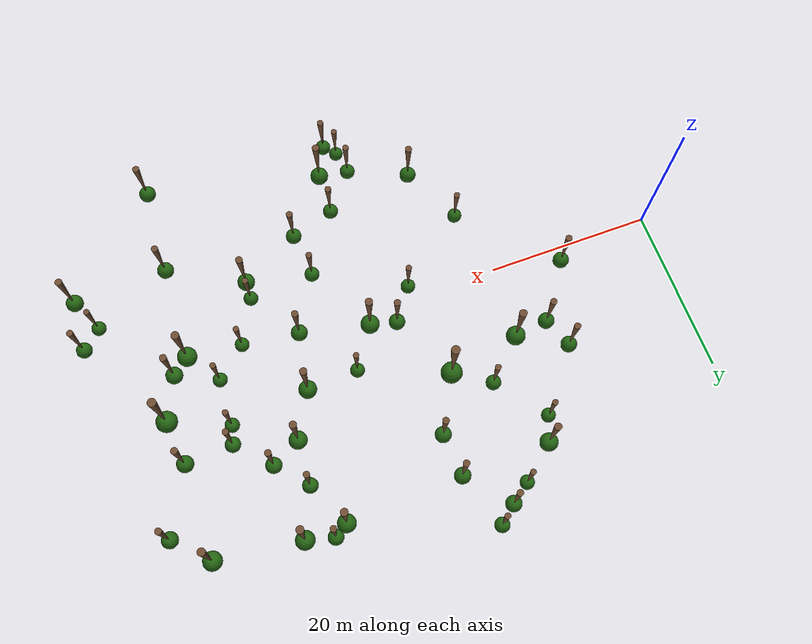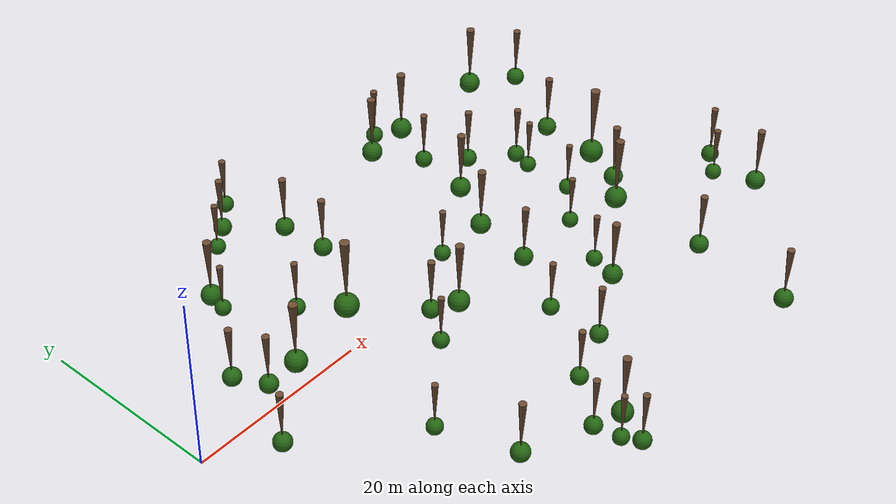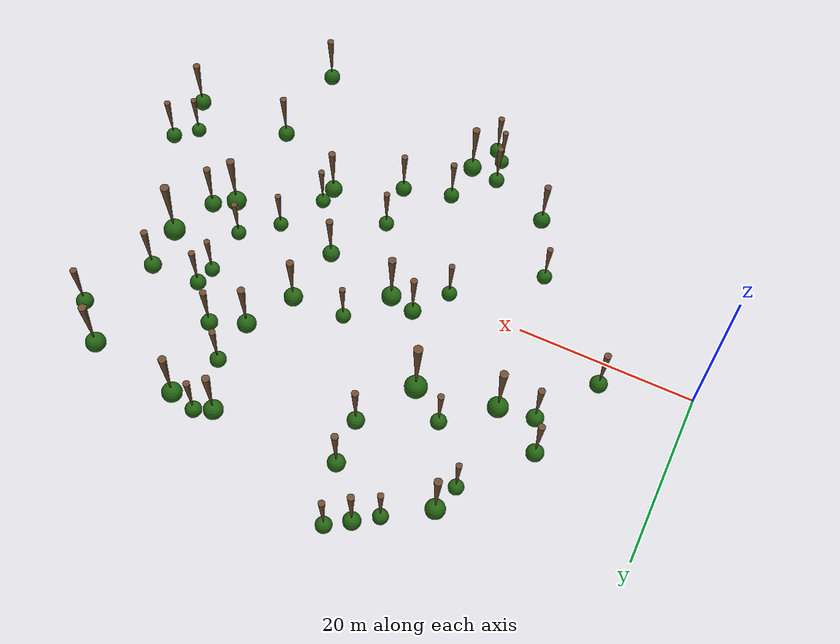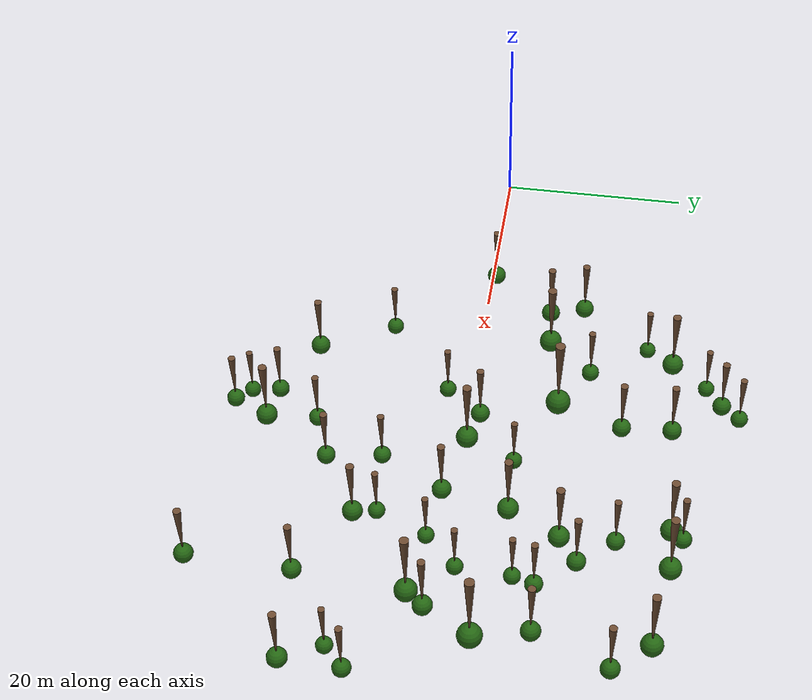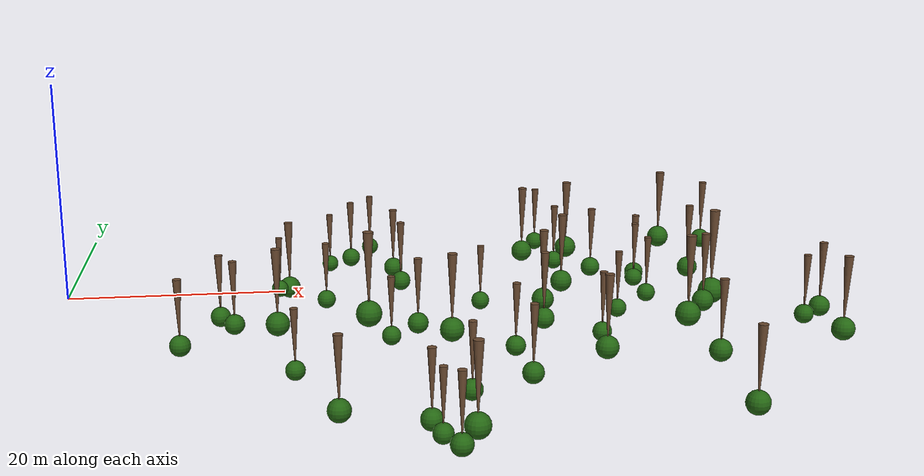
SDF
<sdf version="1.10">
 <model name="lehrforst_trees">
  <static>true</static>
  <link name="tree_0003">
   <visual name="tree_0003_trunk">
    <pose>28.569 8.946 -1.156 3.14159 0 0</pose>
    <geometry><cone><radius>0.546</radius><length>8.736</length></cone></geometry>
    <material>
     <ambient>0.42 0.29 0.19 1</ambient>
     <diffuse>0.42 0.29 0.19 1</diffuse>
     <specular>0.42 0.29 0.19 1</specular>
    </material>
   </visual>
   <visual name="tree_0003_leaves">
    <pose>28.569 8.946 -5.524 3.14159 0 0</pose>
    <geometry><sphere><radius>1.365</radius></sphere></geometry>
    <material>
     <ambient>0.14 0.40 0.07 1</ambient>
     <diffuse>0.14 0.40 0.07 1</diffuse>
     <specular>0.14 0.40 0.07 1</specular>
    </material>
   </visual>
   <collision name="tree_0003_collision">
    <pose>28.569 8.946 -1.156 3.14159 0 0</pose>
    <geometry><cone><radius>0.546</radius><length>8.736</length></cone></geometry>
   </collision>
  </link>
  <link name="tree_0008">
   <visual name="tree_0008_trunk">
    <pose>63.142 3.854 1.507 3.14159 0 0</pose>
    <geometry><cone><radius>0.524</radius><length>8.384</length></cone></geometry>
    <material>
     <ambient>0.42 0.29 0.19 1</ambient>
     <diffuse>0.42 0.29 0.19 1</diffuse>
     <specular>0.42 0.29 0.19 1</specular>
    </material>
   </visual>
   <visual name="tree_0008_leaves">
    <pose>63.142 3.854 -2.6850000000000005 3.14159 0 0</pose>
    <geometry><sphere><radius>1.310</radius></sphere></geometry>
    <material>
     <ambient>0.14 0.40 0.07 1</ambient>
     <diffuse>0.14 0.40 0.07 1</diffuse>
     <specular>0.14 0.40 0.07 1</specular>
    </material>
   </visual>
   <collision name="tree_0008_collision">
    <pose>63.142 3.854 1.507 3.14159 0 0</pose>
    <geometry><cone><radius>0.524</radius><length>8.384</length></cone></geometry>
   </collision>
  </link>
  <link name="tree_0011">
   <visual name="tree_0011_trunk">
    <pose>19.209 7.13 -1.709 3.14159 0 0</pose>
    <geometry><cone><radius>0.492</radius><length>7.872</length></cone></geometry>
    <material>
     <ambient>0.42 0.29 0.19 1</ambient>
     <diffuse>0.42 0.29 0.19 1</diffuse>
     <specular>0.42 0.29 0.19 1</specular>
    </material>
   </visual>
   <visual name="tree_0011_leaves">
    <pose>19.209 7.13 -5.645 3.14159 0 0</pose>
    <geometry><sphere><radius>1.230</radius></sphere></geometry>
    <material>
     <ambient>0.14 0.40 0.07 1</ambient>
     <diffuse>0.14 0.40 0.07 1</diffuse>
     <specular>0.14 0.40 0.07 1</specular>
    </material>
   </visual>
   <collision name="tree_0011_collision">
    <pose>19.209 7.13 -1.709 3.14159 0 0</pose>
    <geometry><cone><radius>0.492</radius><length>7.872</length></cone></geometry>
   </collision>
  </link>
  <link name="tree_0013">
   <visual name="tree_0013_trunk">
    <pose>58.567 -3.165 1.219 3.14159 0 0</pose>
    <geometry><cone><radius>0.486</radius><length>7.776</length></cone></geometry>
    <material>
     <ambient>0.42 0.29 0.19 1</ambient>
     <diffuse>0.42 0.29 0.19 1</diffuse>
     <specular>0.42 0.29 0.19 1</specular>
    </material>
   </visual>
   <visual name="tree_0013_leaves">
    <pose>58.567 -3.165 -2.6689999999999996 3.14159 0 0</pose>
    <geometry><sphere><radius>1.215</radius></sphere></geometry>
    <material>
     <ambient>0.14 0.40 0.07 1</ambient>
     <diffuse>0.14 0.40 0.07 1</diffuse>
     <specular>0.14 0.40 0.07 1</specular>
    </material>
   </visual>
   <collision name="tree_0013_collision">
    <pose>58.567 -3.165 1.219 3.14159 0 0</pose>
    <geometry><cone><radius>0.486</radius><length>7.776</length></cone></geometry>
   </collision>
  </link>
  <link name="tree_0015">
   <visual name="tree_0015_trunk">
    <pose>36.035 -0.141 -0.581 3.14159 0 0</pose>
    <geometry><cone><radius>0.478</radius><length>7.648</length></cone></geometry>
    <material>
     <ambient>0.42 0.29 0.19 1</ambient>
     <diffuse>0.42 0.29 0.19 1</diffuse>
     <specular>0.42 0.29 0.19 1</specular>
    </material>
   </visual>
   <visual name="tree_0015_leaves">
    <pose>36.035 -0.141 -4.404999999999999 3.14159 0 0</pose>
    <geometry><sphere><radius>1.195</radius></sphere></geometry>
    <material>
     <ambient>0.14 0.40 0.07 1</ambient>
     <diffuse>0.14 0.40 0.07 1</diffuse>
     <specular>0.14 0.40 0.07 1</specular>
    </material>
   </visual>
   <collision name="tree_0015_collision">
    <pose>36.035 -0.141 -0.581 3.14159 0 0</pose>
    <geometry><cone><radius>0.478</radius><length>7.648</length></cone></geometry>
   </collision>
  </link>
  <link name="tree_0019">
   <visual name="tree_0019_trunk">
    <pose>52.082 22.715 0.86 3.14159 0 0</pose>
    <geometry><cone><radius>0.472</radius><length>7.552</length></cone></geometry>
    <material>
     <ambient>0.42 0.29 0.19 1</ambient>
     <diffuse>0.42 0.29 0.19 1</diffuse>
     <specular>0.42 0.29 0.19 1</specular>
    </material>
   </visual>
   <visual name="tree_0019_leaves">
    <pose>52.082 22.715 -2.916 3.14159 0 0</pose>
    <geometry><sphere><radius>1.180</radius></sphere></geometry>
    <material>
     <ambient>0.14 0.40 0.07 1</ambient>
     <diffuse>0.14 0.40 0.07 1</diffuse>
     <specular>0.14 0.40 0.07 1</specular>
    </material>
   </visual>
   <collision name="tree_0019_collision">
    <pose>52.082 22.715 0.86 3.14159 0 0</pose>
    <geometry><cone><radius>0.472</radius><length>7.552</length></cone></geometry>
   </collision>
  </link>
  <link name="tree_0021">
   <visual name="tree_0021_trunk">
    <pose>62.606 21.554 2.054 3.14159 0 0</pose>
    <geometry><cone><radius>0.468</radius><length>7.488</length></cone></geometry>
    <material>
     <ambient>0.42 0.29 0.19 1</ambient>
     <diffuse>0.42 0.29 0.19 1</diffuse>
     <specular>0.42 0.29 0.19 1</specular>
    </material>
   </visual>
   <visual name="tree_0021_leaves">
    <pose>62.606 21.554 -1.6900000000000004 3.14159 0 0</pose>
    <geometry><sphere><radius>1.170</radius></sphere></geometry>
    <material>
     <ambient>0.14 0.40 0.07 1</ambient>
     <diffuse>0.14 0.40 0.07 1</diffuse>
     <specular>0.14 0.40 0.07 1</specular>
    </material>
   </visual>
   <collision name="tree_0021_collision">
    <pose>62.606 21.554 2.054 3.14159 0 0</pose>
    <geometry><cone><radius>0.468</radius><length>7.488</length></cone></geometry>
   </collision>
  </link>
  <link name="tree_0026">
   <visual name="tree_0026_trunk">
    <pose>20.56 21.103 -2.404 3.14159 0 0</pose>
    <geometry><cone><radius>0.464</radius><length>7.424</length></cone></geometry>
    <material>
     <ambient>0.42 0.29 0.19 1</ambient>
     <diffuse>0.42 0.29 0.19 1</diffuse>
     <specular>0.42 0.29 0.19 1</specular>
    </material>
   </visual>
   <visual name="tree_0026_leaves">
    <pose>20.56 21.103 -6.116 3.14159 0 0</pose>
    <geometry><sphere><radius>1.160</radius></sphere></geometry>
    <material>
     <ambient>0.14 0.40 0.07 1</ambient>
     <diffuse>0.14 0.40 0.07 1</diffuse>
     <specular>0.14 0.40 0.07 1</specular>
    </material>
   </visual>
   <collision name="tree_0026_collision">
    <pose>20.56 21.103 -2.404 3.14159 0 0</pose>
    <geometry><cone><radius>0.464</radius><length>7.424</length></cone></geometry>
   </collision>
  </link>
  <link name="tree_0034">
   <visual name="tree_0034_trunk">
    <pose>35.26 -22.294 -1.24 3.14159 0 0</pose>
    <geometry><cone><radius>0.460</radius><length>7.360</length></cone></geometry>
    <material>
     <ambient>0.42 0.29 0.19 1</ambient>
     <diffuse>0.42 0.29 0.19 1</diffuse>
     <specular>0.42 0.29 0.19 1</specular>
    </material>
   </visual>
   <visual name="tree_0034_leaves">
    <pose>35.26 -22.294 -4.92 3.14159 0 0</pose>
    <geometry><sphere><radius>1.150</radius></sphere></geometry>
    <material>
     <ambient>0.14 0.40 0.07 1</ambient>
     <diffuse>0.14 0.40 0.07 1</diffuse>
     <specular>0.14 0.40 0.07 1</specular>
    </material>
   </visual>
   <collision name="tree_0034_collision">
    <pose>35.26 -22.294 -1.24 3.14159 0 0</pose>
    <geometry><cone><radius>0.460</radius><length>7.360</length></cone></geometry>
   </collision>
  </link>
  <link name="tree_0035">
   <visual name="tree_0035_trunk">
    <pose>46.962 22.473 0.51 3.14159 0 0</pose>
    <geometry><cone><radius>0.458</radius><length>7.328</length></cone></geometry>
    <material>
     <ambient>0.42 0.29 0.19 1</ambient>
     <diffuse>0.42 0.29 0.19 1</diffuse>
     <specular>0.42 0.29 0.19 1</specular>
    </material>
   </visual>
   <visual name="tree_0035_leaves">
    <pose>46.962 22.473 -3.154 3.14159 0 0</pose>
    <geometry><sphere><radius>1.145</radius></sphere></geometry>
    <material>
     <ambient>0.14 0.40 0.07 1</ambient>
     <diffuse>0.14 0.40 0.07 1</diffuse>
     <specular>0.14 0.40 0.07 1</specular>
    </material>
   </visual>
   <collision name="tree_0035_collision">
    <pose>46.962 22.473 0.51 3.14159 0 0</pose>
    <geometry><cone><radius>0.458</radius><length>7.328</length></cone></geometry>
   </collision>
  </link>
  <link name="tree_0040">
   <visual name="tree_0040_trunk">
    <pose>49.152 11.139 0.233 3.14159 0 0</pose>
    <geometry><cone><radius>0.452</radius><length>7.232</length></cone></geometry>
    <material>
     <ambient>0.42 0.29 0.19 1</ambient>
     <diffuse>0.42 0.29 0.19 1</diffuse>
     <specular>0.42 0.29 0.19 1</specular>
    </material>
   </visual>
   <visual name="tree_0040_leaves">
    <pose>49.152 11.139 -3.383 3.14159 0 0</pose>
    <geometry><sphere><radius>1.130</radius></sphere></geometry>
    <material>
     <ambient>0.14 0.40 0.07 1</ambient>
     <diffuse>0.14 0.40 0.07 1</diffuse>
     <specular>0.14 0.40 0.07 1</specular>
    </material>
   </visual>
   <collision name="tree_0040_collision">
    <pose>49.152 11.139 0.233 3.14159 0 0</pose>
    <geometry><cone><radius>0.452</radius><length>7.232</length></cone></geometry>
   </collision>
  </link>
  <link name="tree_0041">
   <visual name="tree_0041_trunk">
    <pose>46.069 5.531 0.116 3.14159 0 0</pose>
    <geometry><cone><radius>0.452</radius><length>7.232</length></cone></geometry>
    <material>
     <ambient>0.42 0.29 0.19 1</ambient>
     <diffuse>0.42 0.29 0.19 1</diffuse>
     <specular>0.42 0.29 0.19 1</specular>
    </material>
   </visual>
   <visual name="tree_0041_leaves">
    <pose>46.069 5.531 -3.5 3.14159 0 0</pose>
    <geometry><sphere><radius>1.130</radius></sphere></geometry>
    <material>
     <ambient>0.14 0.40 0.07 1</ambient>
     <diffuse>0.14 0.40 0.07 1</diffuse>
     <specular>0.14 0.40 0.07 1</specular>
    </material>
   </visual>
   <collision name="tree_0041_collision">
    <pose>46.069 5.531 0.116 3.14159 0 0</pose>
    <geometry><cone><radius>0.452</radius><length>7.232</length></cone></geometry>
   </collision>
  </link>
  <link name="tree_0060">
   <visual name="tree_0060_trunk">
    <pose>48.872 -10.303 0.335 3.14159 0 0</pose>
    <geometry><cone><radius>0.432</radius><length>6.912</length></cone></geometry>
    <material>
     <ambient>0.42 0.29 0.19 1</ambient>
     <diffuse>0.42 0.29 0.19 1</diffuse>
     <specular>0.42 0.29 0.19 1</specular>
    </material>
   </visual>
   <visual name="tree_0060_leaves">
    <pose>48.872 -10.303 -3.121 3.14159 0 0</pose>
    <geometry><sphere><radius>1.080</radius></sphere></geometry>
    <material>
     <ambient>0.14 0.40 0.07 1</ambient>
     <diffuse>0.14 0.40 0.07 1</diffuse>
     <specular>0.14 0.40 0.07 1</specular>
    </material>
   </visual>
   <collision name="tree_0060_collision">
    <pose>48.872 -10.303 0.335 3.14159 0 0</pose>
    <geometry><cone><radius>0.432</radius><length>6.912</length></cone></geometry>
   </collision>
  </link>
  <link name="tree_0071">
   <visual name="tree_0071_trunk">
    <pose>60.635 -1.175 1.326 3.14159 0 0</pose>
    <geometry><cone><radius>0.422</radius><length>6.752</length></cone></geometry>
    <material>
     <ambient>0.42 0.29 0.19 1</ambient>
     <diffuse>0.42 0.29 0.19 1</diffuse>
     <specular>0.42 0.29 0.19 1</specular>
    </material>
   </visual>
   <visual name="tree_0071_leaves">
    <pose>60.635 -1.175 -2.05 3.14159 0 0</pose>
    <geometry><sphere><radius>1.055</radius></sphere></geometry>
    <material>
     <ambient>0.14 0.40 0.07 1</ambient>
     <diffuse>0.14 0.40 0.07 1</diffuse>
     <specular>0.14 0.40 0.07 1</specular>
    </material>
   </visual>
   <collision name="tree_0071_collision">
    <pose>60.635 -1.175 1.326 3.14159 0 0</pose>
    <geometry><cone><radius>0.422</radius><length>6.752</length></cone></geometry>
   </collision>
  </link>
  <link name="tree_0076">
   <visual name="tree_0076_trunk">
    <pose>69.408 -13.844 2.384 3.14159 0 0</pose>
    <geometry><cone><radius>0.420</radius><length>6.720</length></cone></geometry>
    <material>
     <ambient>0.42 0.29 0.19 1</ambient>
     <diffuse>0.42 0.29 0.19 1</diffuse>
     <specular>0.42 0.29 0.19 1</specular>
    </material>
   </visual>
   <visual name="tree_0076_leaves">
    <pose>69.408 -13.844 -0.976 3.14159 0 0</pose>
    <geometry><sphere><radius>1.050</radius></sphere></geometry>
    <material>
     <ambient>0.14 0.40 0.07 1</ambient>
     <diffuse>0.14 0.40 0.07 1</diffuse>
     <specular>0.14 0.40 0.07 1</specular>
    </material>
   </visual>
   <collision name="tree_0076_collision">
    <pose>69.408 -13.844 2.384 3.14159 0 0</pose>
    <geometry><cone><radius>0.420</radius><length>6.720</length></cone></geometry>
   </collision>
  </link>
  <link name="tree_0080">
   <visual name="tree_0080_trunk">
    <pose>24.254 -18.389 -1.363 3.14159 0 0</pose>
    <geometry><cone><radius>0.418</radius><length>6.688</length></cone></geometry>
    <material>
     <ambient>0.42 0.29 0.19 1</ambient>
     <diffuse>0.42 0.29 0.19 1</diffuse>
     <specular>0.42 0.29 0.19 1</specular>
    </material>
   </visual>
   <visual name="tree_0080_leaves">
    <pose>24.254 -18.389 -4.707 3.14159 0 0</pose>
    <geometry><sphere><radius>1.045</radius></sphere></geometry>
    <material>
     <ambient>0.14 0.40 0.07 1</ambient>
     <diffuse>0.14 0.40 0.07 1</diffuse>
     <specular>0.14 0.40 0.07 1</specular>
    </material>
   </visual>
   <collision name="tree_0080_collision">
    <pose>24.254 -18.389 -1.363 3.14159 0 0</pose>
    <geometry><cone><radius>0.418</radius><length>6.688</length></cone></geometry>
   </collision>
  </link>
  <link name="tree_0083">
   <visual name="tree_0083_trunk">
    <pose>62.414 9.743 1.462 3.14159 0 0</pose>
    <geometry><cone><radius>0.416</radius><length>6.656</length></cone></geometry>
    <material>
     <ambient>0.42 0.29 0.19 1</ambient>
     <diffuse>0.42 0.29 0.19 1</diffuse>
     <specular>0.42 0.29 0.19 1</specular>
    </material>
   </visual>
   <visual name="tree_0083_leaves">
    <pose>62.414 9.743 -1.8659999999999999 3.14159 0 0</pose>
    <geometry><sphere><radius>1.040</radius></sphere></geometry>
    <material>
     <ambient>0.14 0.40 0.07 1</ambient>
     <diffuse>0.14 0.40 0.07 1</diffuse>
     <specular>0.14 0.40 0.07 1</specular>
    </material>
   </visual>
   <collision name="tree_0083_collision">
    <pose>62.414 9.743 1.462 3.14159 0 0</pose>
    <geometry><cone><radius>0.416</radius><length>6.656</length></cone></geometry>
   </collision>
  </link>
  <link name="tree_0085">
   <visual name="tree_0085_trunk">
    <pose>32.181 21.663 -1.035 3.14159 0 0</pose>
    <geometry><cone><radius>0.414</radius><length>6.624</length></cone></geometry>
    <material>
     <ambient>0.42 0.29 0.19 1</ambient>
     <diffuse>0.42 0.29 0.19 1</diffuse>
     <specular>0.42 0.29 0.19 1</specular>
    </material>
   </visual>
   <visual name="tree_0085_leaves">
    <pose>32.181 21.663 -4.3469999999999995 3.14159 0 0</pose>
    <geometry><sphere><radius>1.035</radius></sphere></geometry>
    <material>
     <ambient>0.14 0.40 0.07 1</ambient>
     <diffuse>0.14 0.40 0.07 1</diffuse>
     <specular>0.14 0.40 0.07 1</specular>
    </material>
   </visual>
   <collision name="tree_0085_collision">
    <pose>32.181 21.663 -1.035 3.14159 0 0</pose>
    <geometry><cone><radius>0.414</radius><length>6.624</length></cone></geometry>
   </collision>
  </link>
  <link name="tree_0088">
   <visual name="tree_0088_trunk">
    <pose>13.372 10.431 -2.465 3.14159 0 0</pose>
    <geometry><cone><radius>0.412</radius><length>6.592</length></cone></geometry>
    <material>
     <ambient>0.42 0.29 0.19 1</ambient>
     <diffuse>0.42 0.29 0.19 1</diffuse>
     <specular>0.42 0.29 0.19 1</specular>
    </material>
   </visual>
   <visual name="tree_0088_leaves">
    <pose>13.372 10.431 -5.760999999999999 3.14159 0 0</pose>
    <geometry><sphere><radius>1.030</radius></sphere></geometry>
    <material>
     <ambient>0.14 0.40 0.07 1</ambient>
     <diffuse>0.14 0.40 0.07 1</diffuse>
     <specular>0.14 0.40 0.07 1</specular>
    </material>
   </visual>
   <collision name="tree_0088_collision">
    <pose>13.372 10.431 -2.465 3.14159 0 0</pose>
    <geometry><cone><radius>0.412</radius><length>6.592</length></cone></geometry>
   </collision>
  </link>
  <link name="tree_0092">
   <visual name="tree_0092_trunk">
    <pose>10.021 -0.234 -1.669 3.14159 0 0</pose>
    <geometry><cone><radius>0.412</radius><length>6.592</length></cone></geometry>
    <material>
     <ambient>0.42 0.29 0.19 1</ambient>
     <diffuse>0.42 0.29 0.19 1</diffuse>
     <specular>0.42 0.29 0.19 1</specular>
    </material>
   </visual>
   <visual name="tree_0092_leaves">
    <pose>10.021 -0.234 -4.965 3.14159 0 0</pose>
    <geometry><sphere><radius>1.030</radius></sphere></geometry>
    <material>
     <ambient>0.14 0.40 0.07 1</ambient>
     <diffuse>0.14 0.40 0.07 1</diffuse>
     <specular>0.14 0.40 0.07 1</specular>
    </material>
   </visual>
   <collision name="tree_0092_collision">
    <pose>10.021 -0.234 -1.669 3.14159 0 0</pose>
    <geometry><cone><radius>0.412</radius><length>6.592</length></cone></geometry>
   </collision>
  </link>
  <link name="tree_0093">
   <visual name="tree_0093_trunk">
    <pose>14.92 6.676 -2.076 3.14159 0 0</pose>
    <geometry><cone><radius>0.412</radius><length>6.592</length></cone></geometry>
    <material>
     <ambient>0.42 0.29 0.19 1</ambient>
     <diffuse>0.42 0.29 0.19 1</diffuse>
     <specular>0.42 0.29 0.19 1</specular>
    </material>
   </visual>
   <visual name="tree_0093_leaves">
    <pose>14.92 6.676 -5.372 3.14159 0 0</pose>
    <geometry><sphere><radius>1.030</radius></sphere></geometry>
    <material>
     <ambient>0.14 0.40 0.07 1</ambient>
     <diffuse>0.14 0.40 0.07 1</diffuse>
     <specular>0.14 0.40 0.07 1</specular>
    </material>
   </visual>
   <collision name="tree_0093_collision">
    <pose>14.92 6.676 -2.076 3.14159 0 0</pose>
    <geometry><cone><radius>0.412</radius><length>6.592</length></cone></geometry>
   </collision>
  </link>
  <link name="tree_0094">
   <visual name="tree_0094_trunk">
    <pose>57.165 -26.08 0.838 3.14159 0 0</pose>
    <geometry><cone><radius>0.412</radius><length>6.592</length></cone></geometry>
    <material>
     <ambient>0.42 0.29 0.19 1</ambient>
     <diffuse>0.42 0.29 0.19 1</diffuse>
     <specular>0.42 0.29 0.19 1</specular>
    </material>
   </visual>
   <visual name="tree_0094_leaves">
    <pose>57.165 -26.08 -2.4579999999999997 3.14159 0 0</pose>
    <geometry><sphere><radius>1.030</radius></sphere></geometry>
    <material>
     <ambient>0.14 0.40 0.07 1</ambient>
     <diffuse>0.14 0.40 0.07 1</diffuse>
     <specular>0.14 0.40 0.07 1</specular>
    </material>
   </visual>
   <collision name="tree_0094_collision">
    <pose>57.165 -26.08 0.838 3.14159 0 0</pose>
    <geometry><cone><radius>0.412</radius><length>6.592</length></cone></geometry>
   </collision>
  </link>
  <link name="tree_0095">
   <visual name="tree_0095_trunk">
    <pose>44.75 -1.61 0.196 3.14159 0 0</pose>
    <geometry><cone><radius>0.412</radius><length>6.592</length></cone></geometry>
    <material>
     <ambient>0.42 0.29 0.19 1</ambient>
     <diffuse>0.42 0.29 0.19 1</diffuse>
     <specular>0.42 0.29 0.19 1</specular>
    </material>
   </visual>
   <visual name="tree_0095_leaves">
    <pose>44.75 -1.61 -3.0999999999999996 3.14159 0 0</pose>
    <geometry><sphere><radius>1.030</radius></sphere></geometry>
    <material>
     <ambient>0.14 0.40 0.07 1</ambient>
     <diffuse>0.14 0.40 0.07 1</diffuse>
     <specular>0.14 0.40 0.07 1</specular>
    </material>
   </visual>
   <collision name="tree_0095_collision">
    <pose>44.75 -1.61 0.196 3.14159 0 0</pose>
    <geometry><cone><radius>0.412</radius><length>6.592</length></cone></geometry>
   </collision>
  </link>
  <link name="tree_0099">
   <visual name="tree_0099_trunk">
    <pose>32.546 16.219 -1.05 3.14159 0 0</pose>
    <geometry><cone><radius>0.408</radius><length>6.528</length></cone></geometry>
    <material>
     <ambient>0.42 0.29 0.19 1</ambient>
     <diffuse>0.42 0.29 0.19 1</diffuse>
     <specular>0.42 0.29 0.19 1</specular>
    </material>
   </visual>
   <visual name="tree_0099_leaves">
    <pose>32.546 16.219 -4.314 3.14159 0 0</pose>
    <geometry><sphere><radius>1.020</radius></sphere></geometry>
    <material>
     <ambient>0.14 0.40 0.07 1</ambient>
     <diffuse>0.14 0.40 0.07 1</diffuse>
     <specular>0.14 0.40 0.07 1</specular>
    </material>
   </visual>
   <collision name="tree_0099_collision">
    <pose>32.546 16.219 -1.05 3.14159 0 0</pose>
    <geometry><cone><radius>0.408</radius><length>6.528</length></cone></geometry>
   </collision>
  </link>
  <link name="tree_0100">
   <visual name="tree_0100_trunk">
    <pose>32.823 0.866 -0.689 3.14159 0 0</pose>
    <geometry><cone><radius>0.408</radius><length>6.528</length></cone></geometry>
    <material>
     <ambient>0.42 0.29 0.19 1</ambient>
     <diffuse>0.42 0.29 0.19 1</diffuse>
     <specular>0.42 0.29 0.19 1</specular>
    </material>
   </visual>
   <visual name="tree_0100_leaves">
    <pose>32.823 0.866 -3.953 3.14159 0 0</pose>
    <geometry><sphere><radius>1.020</radius></sphere></geometry>
    <material>
     <ambient>0.14 0.40 0.07 1</ambient>
     <diffuse>0.14 0.40 0.07 1</diffuse>
     <specular>0.14 0.40 0.07 1</specular>
    </material>
   </visual>
   <collision name="tree_0100_collision">
    <pose>32.823 0.866 -0.689 3.14159 0 0</pose>
    <geometry><cone><radius>0.408</radius><length>6.528</length></cone></geometry>
   </collision>
  </link>
  <link name="tree_0104">
   <visual name="tree_0104_trunk">
    <pose>57.872 -14.827 1.113 3.14159 0 0</pose>
    <geometry><cone><radius>0.408</radius><length>6.528</length></cone></geometry>
    <material>
     <ambient>0.42 0.29 0.19 1</ambient>
     <diffuse>0.42 0.29 0.19 1</diffuse>
     <specular>0.42 0.29 0.19 1</specular>
    </material>
   </visual>
   <visual name="tree_0104_leaves">
    <pose>57.872 -14.827 -2.151 3.14159 0 0</pose>
    <geometry><sphere><radius>1.020</radius></sphere></geometry>
    <material>
     <ambient>0.14 0.40 0.07 1</ambient>
     <diffuse>0.14 0.40 0.07 1</diffuse>
     <specular>0.14 0.40 0.07 1</specular>
    </material>
   </visual>
   <collision name="tree_0104_collision">
    <pose>57.872 -14.827 1.113 3.14159 0 0</pose>
    <geometry><cone><radius>0.408</radius><length>6.528</length></cone></geometry>
   </collision>
  </link>
  <link name="tree_0107">
   <visual name="tree_0107_trunk">
    <pose>27.715 26.8 -1.274 3.14159 0 0</pose>
    <geometry><cone><radius>0.406</radius><length>6.496</length></cone></geometry>
    <material>
     <ambient>0.42 0.29 0.19 1</ambient>
     <diffuse>0.42 0.29 0.19 1</diffuse>
     <specular>0.42 0.29 0.19 1</specular>
    </material>
   </visual>
   <visual name="tree_0107_leaves">
    <pose>27.715 26.8 -4.522 3.14159 0 0</pose>
    <geometry><sphere><radius>1.015</radius></sphere></geometry>
    <material>
     <ambient>0.14 0.40 0.07 1</ambient>
     <diffuse>0.14 0.40 0.07 1</diffuse>
     <specular>0.14 0.40 0.07 1</specular>
    </material>
   </visual>
   <collision name="tree_0107_collision">
    <pose>27.715 26.8 -1.274 3.14159 0 0</pose>
    <geometry><cone><radius>0.406</radius><length>6.496</length></cone></geometry>
   </collision>
  </link>
  <link name="tree_0115">
   <visual name="tree_0115_trunk">
    <pose>66.375 17.798 2.19 3.14159 0 0</pose>
    <geometry><cone><radius>0.400</radius><length>6.400</length></cone></geometry>
    <material>
     <ambient>0.42 0.29 0.19 1</ambient>
     <diffuse>0.42 0.29 0.19 1</diffuse>
     <specular>0.42 0.29 0.19 1</specular>
    </material>
   </visual>
   <visual name="tree_0115_leaves">
    <pose>66.375 17.798 -1.0100000000000002 3.14159 0 0</pose>
    <geometry><sphere><radius>1.000</radius></sphere></geometry>
    <material>
     <ambient>0.14 0.40 0.07 1</ambient>
     <diffuse>0.14 0.40 0.07 1</diffuse>
     <specular>0.14 0.40 0.07 1</specular>
    </material>
   </visual>
   <collision name="tree_0115_collision">
    <pose>66.375 17.798 2.19 3.14159 0 0</pose>
    <geometry><cone><radius>0.400</radius><length>6.400</length></cone></geometry>
   </collision>
  </link>
  <link name="tree_0118">
   <visual name="tree_0118_trunk">
    <pose>52.779 13.26 0.645 3.14159 0 0</pose>
    <geometry><cone><radius>0.400</radius><length>6.400</length></cone></geometry>
    <material>
     <ambient>0.42 0.29 0.19 1</ambient>
     <diffuse>0.42 0.29 0.19 1</diffuse>
     <specular>0.42 0.29 0.19 1</specular>
    </material>
   </visual>
   <visual name="tree_0118_leaves">
    <pose>52.779 13.26 -2.555 3.14159 0 0</pose>
    <geometry><sphere><radius>1.000</radius></sphere></geometry>
    <material>
     <ambient>0.14 0.40 0.07 1</ambient>
     <diffuse>0.14 0.40 0.07 1</diffuse>
     <specular>0.14 0.40 0.07 1</specular>
    </material>
   </visual>
   <collision name="tree_0118_collision">
    <pose>52.779 13.26 0.645 3.14159 0 0</pose>
    <geometry><cone><radius>0.400</radius><length>6.400</length></cone></geometry>
   </collision>
  </link>
  <link name="tree_0128">
   <visual name="tree_0128_trunk">
    <pose>41.271 -14.518 -0.474 3.14159 0 0</pose>
    <geometry><cone><radius>0.394</radius><length>6.304</length></cone></geometry>
    <material>
     <ambient>0.42 0.29 0.19 1</ambient>
     <diffuse>0.42 0.29 0.19 1</diffuse>
     <specular>0.42 0.29 0.19 1</specular>
    </material>
   </visual>
   <visual name="tree_0128_leaves">
    <pose>41.271 -14.518 -3.6260000000000003 3.14159 0 0</pose>
    <geometry><sphere><radius>0.985</radius></sphere></geometry>
    <material>
     <ambient>0.14 0.40 0.07 1</ambient>
     <diffuse>0.14 0.40 0.07 1</diffuse>
     <specular>0.14 0.40 0.07 1</specular>
    </material>
   </visual>
   <collision name="tree_0128_collision">
    <pose>41.271 -14.518 -0.474 3.14159 0 0</pose>
    <geometry><cone><radius>0.394</radius><length>6.304</length></cone></geometry>
   </collision>
  </link>
  <link name="tree_0133">
   <visual name="tree_0133_trunk">
    <pose>33.437 -26.119 -1.676 3.14159 0 0</pose>
    <geometry><cone><radius>0.388</radius><length>6.208</length></cone></geometry>
    <material>
     <ambient>0.42 0.29 0.19 1</ambient>
     <diffuse>0.42 0.29 0.19 1</diffuse>
     <specular>0.42 0.29 0.19 1</specular>
    </material>
   </visual>
   <visual name="tree_0133_leaves">
    <pose>33.437 -26.119 -4.78 3.14159 0 0</pose>
    <geometry><sphere><radius>0.970</radius></sphere></geometry>
    <material>
     <ambient>0.14 0.40 0.07 1</ambient>
     <diffuse>0.14 0.40 0.07 1</diffuse>
     <specular>0.14 0.40 0.07 1</specular>
    </material>
   </visual>
   <collision name="tree_0133_collision">
    <pose>33.437 -26.119 -1.676 3.14159 0 0</pose>
    <geometry><cone><radius>0.388</radius><length>6.208</length></cone></geometry>
   </collision>
  </link>
  <link name="tree_0134">
   <visual name="tree_0134_trunk">
    <pose>31.612 -21.485 -1.44 3.14159 0 0</pose>
    <geometry><cone><radius>0.388</radius><length>6.208</length></cone></geometry>
    <material>
     <ambient>0.42 0.29 0.19 1</ambient>
     <diffuse>0.42 0.29 0.19 1</diffuse>
     <specular>0.42 0.29 0.19 1</specular>
    </material>
   </visual>
   <visual name="tree_0134_leaves">
    <pose>31.612 -21.485 -4.5440000000000005 3.14159 0 0</pose>
    <geometry><sphere><radius>0.970</radius></sphere></geometry>
    <material>
     <ambient>0.14 0.40 0.07 1</ambient>
     <diffuse>0.14 0.40 0.07 1</diffuse>
     <specular>0.14 0.40 0.07 1</specular>
    </material>
   </visual>
   <collision name="tree_0134_collision">
    <pose>31.612 -21.485 -1.44 3.14159 0 0</pose>
    <geometry><cone><radius>0.388</radius><length>6.208</length></cone></geometry>
   </collision>
  </link>
  <link name="tree_0142">
   <visual name="tree_0142_trunk">
    <pose>69.806 -7.501 2.163 3.14159 0 0</pose>
    <geometry><cone><radius>0.384</radius><length>6.144</length></cone></geometry>
    <material>
     <ambient>0.42 0.29 0.19 1</ambient>
     <diffuse>0.42 0.29 0.19 1</diffuse>
     <specular>0.42 0.29 0.19 1</specular>
    </material>
   </visual>
   <visual name="tree_0142_leaves">
    <pose>69.806 -7.501 -0.9090000000000003 3.14159 0 0</pose>
    <geometry><sphere><radius>0.960</radius></sphere></geometry>
    <material>
     <ambient>0.14 0.40 0.07 1</ambient>
     <diffuse>0.14 0.40 0.07 1</diffuse>
     <specular>0.14 0.40 0.07 1</specular>
    </material>
   </visual>
   <collision name="tree_0142_collision">
    <pose>69.806 -7.501 2.163 3.14159 0 0</pose>
    <geometry><cone><radius>0.384</radius><length>6.144</length></cone></geometry>
   </collision>
  </link>
  <link name="tree_0143">
   <visual name="tree_0143_trunk">
    <pose>35.634 -16.514 -1.045 3.14159 0 0</pose>
    <geometry><cone><radius>0.384</radius><length>6.144</length></cone></geometry>
    <material>
     <ambient>0.42 0.29 0.19 1</ambient>
     <diffuse>0.42 0.29 0.19 1</diffuse>
     <specular>0.42 0.29 0.19 1</specular>
    </material>
   </visual>
   <visual name="tree_0143_leaves">
    <pose>35.634 -16.514 -4.117 3.14159 0 0</pose>
    <geometry><sphere><radius>0.960</radius></sphere></geometry>
    <material>
     <ambient>0.14 0.40 0.07 1</ambient>
     <diffuse>0.14 0.40 0.07 1</diffuse>
     <specular>0.14 0.40 0.07 1</specular>
    </material>
   </visual>
   <collision name="tree_0143_collision">
    <pose>35.634 -16.514 -1.045 3.14159 0 0</pose>
    <geometry><cone><radius>0.384</radius><length>6.144</length></cone></geometry>
   </collision>
  </link>
  <link name="tree_0146">
   <visual name="tree_0146_trunk">
    <pose>56.52 9.371 0.958 3.14159 0 0</pose>
    <geometry><cone><radius>0.382</radius><length>6.112</length></cone></geometry>
    <material>
     <ambient>0.42 0.29 0.19 1</ambient>
     <diffuse>0.42 0.29 0.19 1</diffuse>
     <specular>0.42 0.29 0.19 1</specular>
    </material>
   </visual>
   <visual name="tree_0146_leaves">
    <pose>56.52 9.371 -2.098 3.14159 0 0</pose>
    <geometry><sphere><radius>0.955</radius></sphere></geometry>
    <material>
     <ambient>0.14 0.40 0.07 1</ambient>
     <diffuse>0.14 0.40 0.07 1</diffuse>
     <specular>0.14 0.40 0.07 1</specular>
    </material>
   </visual>
   <collision name="tree_0146_collision">
    <pose>56.52 9.371 0.958 3.14159 0 0</pose>
    <geometry><cone><radius>0.382</radius><length>6.112</length></cone></geometry>
   </collision>
  </link>
  <link name="tree_0147">
   <visual name="tree_0147_trunk">
    <pose>49.512 16.935 0.313 3.14159 0 0</pose>
    <geometry><cone><radius>0.382</radius><length>6.112</length></cone></geometry>
    <material>
     <ambient>0.42 0.29 0.19 1</ambient>
     <diffuse>0.42 0.29 0.19 1</diffuse>
     <specular>0.42 0.29 0.19 1</specular>
    </material>
   </visual>
   <visual name="tree_0147_leaves">
    <pose>49.512 16.935 -2.743 3.14159 0 0</pose>
    <geometry><sphere><radius>0.955</radius></sphere></geometry>
    <material>
     <ambient>0.14 0.40 0.07 1</ambient>
     <diffuse>0.14 0.40 0.07 1</diffuse>
     <specular>0.14 0.40 0.07 1</specular>
    </material>
   </visual>
   <collision name="tree_0147_collision">
    <pose>49.512 16.935 0.313 3.14159 0 0</pose>
    <geometry><cone><radius>0.382</radius><length>6.112</length></cone></geometry>
   </collision>
  </link>
  <link name="tree_0154">
   <visual name="tree_0154_trunk">
    <pose>24.334 12.093 -1.757 3.14159 0 0</pose>
    <geometry><cone><radius>0.380</radius><length>6.080</length></cone></geometry>
    <material>
     <ambient>0.42 0.29 0.19 1</ambient>
     <diffuse>0.42 0.29 0.19 1</diffuse>
     <specular>0.42 0.29 0.19 1</specular>
    </material>
   </visual>
   <visual name="tree_0154_leaves">
    <pose>24.334 12.093 -4.797 3.14159 0 0</pose>
    <geometry><sphere><radius>0.950</radius></sphere></geometry>
    <material>
     <ambient>0.14 0.40 0.07 1</ambient>
     <diffuse>0.14 0.40 0.07 1</diffuse>
     <specular>0.14 0.40 0.07 1</specular>
    </material>
   </visual>
   <collision name="tree_0154_collision">
    <pose>24.334 12.093 -1.757 3.14159 0 0</pose>
    <geometry><cone><radius>0.380</radius><length>6.080</length></cone></geometry>
   </collision>
  </link>
  <link name="tree_0156">
   <visual name="tree_0156_trunk">
    <pose>48.653 23.689 0.677 3.14159 0 0</pose>
    <geometry><cone><radius>0.380</radius><length>6.080</length></cone></geometry>
    <material>
     <ambient>0.42 0.29 0.19 1</ambient>
     <diffuse>0.42 0.29 0.19 1</diffuse>
     <specular>0.42 0.29 0.19 1</specular>
    </material>
   </visual>
   <visual name="tree_0156_leaves">
    <pose>48.653 23.689 -2.363 3.14159 0 0</pose>
    <geometry><sphere><radius>0.950</radius></sphere></geometry>
    <material>
     <ambient>0.14 0.40 0.07 1</ambient>
     <diffuse>0.14 0.40 0.07 1</diffuse>
     <specular>0.14 0.40 0.07 1</specular>
    </material>
   </visual>
   <collision name="tree_0156_collision">
    <pose>48.653 23.689 0.677 3.14159 0 0</pose>
    <geometry><cone><radius>0.380</radius><length>6.080</length></cone></geometry>
   </collision>
  </link>
  <link name="tree_0164">
   <visual name="tree_0164_trunk">
    <pose>30.04 28.734 -0.795 3.14159 0 0</pose>
    <geometry><cone><radius>0.374</radius><length>5.984</length></cone></geometry>
    <material>
     <ambient>0.42 0.29 0.19 1</ambient>
     <diffuse>0.42 0.29 0.19 1</diffuse>
     <specular>0.42 0.29 0.19 1</specular>
    </material>
   </visual>
   <visual name="tree_0164_leaves">
    <pose>30.04 28.734 -3.787 3.14159 0 0</pose>
    <geometry><sphere><radius>0.935</radius></sphere></geometry>
    <material>
     <ambient>0.14 0.40 0.07 1</ambient>
     <diffuse>0.14 0.40 0.07 1</diffuse>
     <specular>0.14 0.40 0.07 1</specular>
    </material>
   </visual>
   <collision name="tree_0164_collision">
    <pose>30.04 28.734 -0.795 3.14159 0 0</pose>
    <geometry><cone><radius>0.374</radius><length>5.984</length></cone></geometry>
   </collision>
  </link>
  <link name="tree_0173">
   <visual name="tree_0173_trunk">
    <pose>40.775 -8.554 -0.27 3.14159 0 0</pose>
    <geometry><cone><radius>0.372</radius><length>5.952</length></cone></geometry>
    <material>
     <ambient>0.42 0.29 0.19 1</ambient>
     <diffuse>0.42 0.29 0.19 1</diffuse>
     <specular>0.42 0.29 0.19 1</specular>
    </material>
   </visual>
   <visual name="tree_0173_leaves">
    <pose>40.775 -8.554 -3.246 3.14159 0 0</pose>
    <geometry><sphere><radius>0.930</radius></sphere></geometry>
    <material>
     <ambient>0.14 0.40 0.07 1</ambient>
     <diffuse>0.14 0.40 0.07 1</diffuse>
     <specular>0.14 0.40 0.07 1</specular>
    </material>
   </visual>
   <collision name="tree_0173_collision">
    <pose>40.775 -8.554 -0.27 3.14159 0 0</pose>
    <geometry><cone><radius>0.372</radius><length>5.952</length></cone></geometry>
   </collision>
  </link>
  <link name="tree_0188">
   <visual name="tree_0188_trunk">
    <pose>29.904 -3.082 -0.838 3.14159 0 0</pose>
    <geometry><cone><radius>0.364</radius><length>5.824</length></cone></geometry>
    <material>
     <ambient>0.42 0.29 0.19 1</ambient>
     <diffuse>0.42 0.29 0.19 1</diffuse>
     <specular>0.42 0.29 0.19 1</specular>
    </material>
   </visual>
   <visual name="tree_0188_leaves">
    <pose>29.904 -3.082 -3.75 3.14159 0 0</pose>
    <geometry><sphere><radius>0.910</radius></sphere></geometry>
    <material>
     <ambient>0.14 0.40 0.07 1</ambient>
     <diffuse>0.14 0.40 0.07 1</diffuse>
     <specular>0.14 0.40 0.07 1</specular>
    </material>
   </visual>
   <collision name="tree_0188_collision">
    <pose>29.904 -3.082 -0.838 3.14159 0 0</pose>
    <geometry><cone><radius>0.364</radius><length>5.824</length></cone></geometry>
   </collision>
  </link>
  <link name="tree_0197">
   <visual name="tree_0197_trunk">
    <pose>20.782 -10.396 -1.178 3.14159 0 0</pose>
    <geometry><cone><radius>0.360</radius><length>5.760</length></cone></geometry>
    <material>
     <ambient>0.42 0.29 0.19 1</ambient>
     <diffuse>0.42 0.29 0.19 1</diffuse>
     <specular>0.42 0.29 0.19 1</specular>
    </material>
   </visual>
   <visual name="tree_0197_leaves">
    <pose>20.782 -10.396 -4.058 3.14159 0 0</pose>
    <geometry><sphere><radius>0.900</radius></sphere></geometry>
    <material>
     <ambient>0.14 0.40 0.07 1</ambient>
     <diffuse>0.14 0.40 0.07 1</diffuse>
     <specular>0.14 0.40 0.07 1</specular>
    </material>
   </visual>
   <collision name="tree_0197_collision">
    <pose>20.782 -10.396 -1.178 3.14159 0 0</pose>
    <geometry><cone><radius>0.360</radius><length>5.760</length></cone></geometry>
   </collision>
  </link>
  <link name="tree_0202">
   <visual name="tree_0202_trunk">
    <pose>48.984 -7.73 0.366 3.14159 0 0</pose>
    <geometry><cone><radius>0.358</radius><length>5.728</length></cone></geometry>
    <material>
     <ambient>0.42 0.29 0.19 1</ambient>
     <diffuse>0.42 0.29 0.19 1</diffuse>
     <specular>0.42 0.29 0.19 1</specular>
    </material>
   </visual>
   <visual name="tree_0202_leaves">
    <pose>48.984 -7.73 -2.4979999999999998 3.14159 0 0</pose>
    <geometry><sphere><radius>0.895</radius></sphere></geometry>
    <material>
     <ambient>0.14 0.40 0.07 1</ambient>
     <diffuse>0.14 0.40 0.07 1</diffuse>
     <specular>0.14 0.40 0.07 1</specular>
    </material>
   </visual>
   <collision name="tree_0202_collision">
    <pose>48.984 -7.73 0.366 3.14159 0 0</pose>
    <geometry><cone><radius>0.358</radius><length>5.728</length></cone></geometry>
   </collision>
  </link>
  <link name="tree_0205">
   <visual name="tree_0205_trunk">
    <pose>19.484 18.128 -2.468 3.14159 0 0</pose>
    <geometry><cone><radius>0.358</radius><length>5.728</length></cone></geometry>
    <material>
     <ambient>0.42 0.29 0.19 1</ambient>
     <diffuse>0.42 0.29 0.19 1</diffuse>
     <specular>0.42 0.29 0.19 1</specular>
    </material>
   </visual>
   <visual name="tree_0205_leaves">
    <pose>19.484 18.128 -5.332 3.14159 0 0</pose>
    <geometry><sphere><radius>0.895</radius></sphere></geometry>
    <material>
     <ambient>0.14 0.40 0.07 1</ambient>
     <diffuse>0.14 0.40 0.07 1</diffuse>
     <specular>0.14 0.40 0.07 1</specular>
    </material>
   </visual>
   <collision name="tree_0205_collision">
    <pose>19.484 18.128 -2.468 3.14159 0 0</pose>
    <geometry><cone><radius>0.358</radius><length>5.728</length></cone></geometry>
   </collision>
  </link>
  <link name="tree_0208">
   <visual name="tree_0208_trunk">
    <pose>25.237 24.976 -1.773 3.14159 0 0</pose>
    <geometry><cone><radius>0.358</radius><length>5.728</length></cone></geometry>
    <material>
     <ambient>0.42 0.29 0.19 1</ambient>
     <diffuse>0.42 0.29 0.19 1</diffuse>
     <specular>0.42 0.29 0.19 1</specular>
    </material>
   </visual>
   <visual name="tree_0208_leaves">
    <pose>25.237 24.976 -4.637 3.14159 0 0</pose>
    <geometry><sphere><radius>0.895</radius></sphere></geometry>
    <material>
     <ambient>0.14 0.40 0.07 1</ambient>
     <diffuse>0.14 0.40 0.07 1</diffuse>
     <specular>0.14 0.40 0.07 1</specular>
    </material>
   </visual>
   <collision name="tree_0208_collision">
    <pose>25.237 24.976 -1.773 3.14159 0 0</pose>
    <geometry><cone><radius>0.358</radius><length>5.728</length></cone></geometry>
   </collision>
  </link>
  <link name="tree_0210">
   <visual name="tree_0210_trunk">
    <pose>55.895 7.127 0.859 3.14159 0 0</pose>
    <geometry><cone><radius>0.358</radius><length>5.728</length></cone></geometry>
    <material>
     <ambient>0.42 0.29 0.19 1</ambient>
     <diffuse>0.42 0.29 0.19 1</diffuse>
     <specular>0.42 0.29 0.19 1</specular>
    </material>
   </visual>
   <visual name="tree_0210_leaves">
    <pose>55.895 7.127 -2.005 3.14159 0 0</pose>
    <geometry><sphere><radius>0.895</radius></sphere></geometry>
    <material>
     <ambient>0.14 0.40 0.07 1</ambient>
     <diffuse>0.14 0.40 0.07 1</diffuse>
     <specular>0.14 0.40 0.07 1</specular>
    </material>
   </visual>
   <collision name="tree_0210_collision">
    <pose>55.895 7.127 0.859 3.14159 0 0</pose>
    <geometry><cone><radius>0.358</radius><length>5.728</length></cone></geometry>
   </collision>
  </link>
  <link name="tree_0212">
   <visual name="tree_0212_trunk">
    <pose>39.603 5.335 -0.483 3.14159 0 0</pose>
    <geometry><cone><radius>0.358</radius><length>5.728</length></cone></geometry>
    <material>
     <ambient>0.42 0.29 0.19 1</ambient>
     <diffuse>0.42 0.29 0.19 1</diffuse>
     <specular>0.42 0.29 0.19 1</specular>
    </material>
   </visual>
   <visual name="tree_0212_leaves">
    <pose>39.603 5.335 -3.347 3.14159 0 0</pose>
    <geometry><sphere><radius>0.895</radius></sphere></geometry>
    <material>
     <ambient>0.14 0.40 0.07 1</ambient>
     <diffuse>0.14 0.40 0.07 1</diffuse>
     <specular>0.14 0.40 0.07 1</specular>
    </material>
   </visual>
   <collision name="tree_0212_collision">
    <pose>39.603 5.335 -0.483 3.14159 0 0</pose>
    <geometry><cone><radius>0.358</radius><length>5.728</length></cone></geometry>
   </collision>
  </link>
  <link name="tree_0222">
   <visual name="tree_0222_trunk">
    <pose>32.17 -24.463 -1.665 3.14159 0 0</pose>
    <geometry><cone><radius>0.354</radius><length>5.664</length></cone></geometry>
    <material>
     <ambient>0.42 0.29 0.19 1</ambient>
     <diffuse>0.42 0.29 0.19 1</diffuse>
     <specular>0.42 0.29 0.19 1</specular>
    </material>
   </visual>
   <visual name="tree_0222_leaves">
    <pose>32.17 -24.463 -4.497 3.14159 0 0</pose>
    <geometry><sphere><radius>0.885</radius></sphere></geometry>
    <material>
     <ambient>0.14 0.40 0.07 1</ambient>
     <diffuse>0.14 0.40 0.07 1</diffuse>
     <specular>0.14 0.40 0.07 1</specular>
    </material>
   </visual>
   <collision name="tree_0222_collision">
    <pose>32.17 -24.463 -1.665 3.14159 0 0</pose>
    <geometry><cone><radius>0.354</radius><length>5.664</length></cone></geometry>
   </collision>
  </link>
  <link name="tree_0223">
   <visual name="tree_0223_trunk">
    <pose>55.606 1.319 1.012 3.14159 0 0</pose>
    <geometry><cone><radius>0.354</radius><length>5.664</length></cone></geometry>
    <material>
     <ambient>0.42 0.29 0.19 1</ambient>
     <diffuse>0.42 0.29 0.19 1</diffuse>
     <specular>0.42 0.29 0.19 1</specular>
    </material>
   </visual>
   <visual name="tree_0223_leaves">
    <pose>55.606 1.319 -1.8199999999999998 3.14159 0 0</pose>
    <geometry><sphere><radius>0.885</radius></sphere></geometry>
    <material>
     <ambient>0.14 0.40 0.07 1</ambient>
     <diffuse>0.14 0.40 0.07 1</diffuse>
     <specular>0.14 0.40 0.07 1</specular>
    </material>
   </visual>
   <collision name="tree_0223_collision">
    <pose>55.606 1.319 1.012 3.14159 0 0</pose>
    <geometry><cone><radius>0.354</radius><length>5.664</length></cone></geometry>
   </collision>
  </link>
  <link name="tree_0225">
   <visual name="tree_0225_trunk">
    <pose>51.808 -2.17 0.675 3.14159 0 0</pose>
    <geometry><cone><radius>0.352</radius><length>5.632</length></cone></geometry>
    <material>
     <ambient>0.42 0.29 0.19 1</ambient>
     <diffuse>0.42 0.29 0.19 1</diffuse>
     <specular>0.42 0.29 0.19 1</specular>
    </material>
   </visual>
   <visual name="tree_0225_leaves">
    <pose>51.808 -2.17 -2.141 3.14159 0 0</pose>
    <geometry><sphere><radius>0.880</radius></sphere></geometry>
    <material>
     <ambient>0.14 0.40 0.07 1</ambient>
     <diffuse>0.14 0.40 0.07 1</diffuse>
     <specular>0.14 0.40 0.07 1</specular>
    </material>
   </visual>
   <collision name="tree_0225_collision">
    <pose>51.808 -2.17 0.675 3.14159 0 0</pose>
    <geometry><cone><radius>0.352</radius><length>5.632</length></cone></geometry>
   </collision>
  </link>
  <link name="tree_0230">
   <visual name="tree_0230_trunk">
    <pose>67.448 -9.612 1.912 3.14159 0 0</pose>
    <geometry><cone><radius>0.352</radius><length>5.632</length></cone></geometry>
    <material>
     <ambient>0.42 0.29 0.19 1</ambient>
     <diffuse>0.42 0.29 0.19 1</diffuse>
     <specular>0.42 0.29 0.19 1</specular>
    </material>
   </visual>
   <visual name="tree_0230_leaves">
    <pose>67.448 -9.612 -0.9039999999999999 3.14159 0 0</pose>
    <geometry><sphere><radius>0.880</radius></sphere></geometry>
    <material>
     <ambient>0.14 0.40 0.07 1</ambient>
     <diffuse>0.14 0.40 0.07 1</diffuse>
     <specular>0.14 0.40 0.07 1</specular>
    </material>
   </visual>
   <collision name="tree_0230_collision">
    <pose>67.448 -9.612 1.912 3.14159 0 0</pose>
    <geometry><cone><radius>0.352</radius><length>5.632</length></cone></geometry>
   </collision>
  </link>
 </model>
</sdf>
